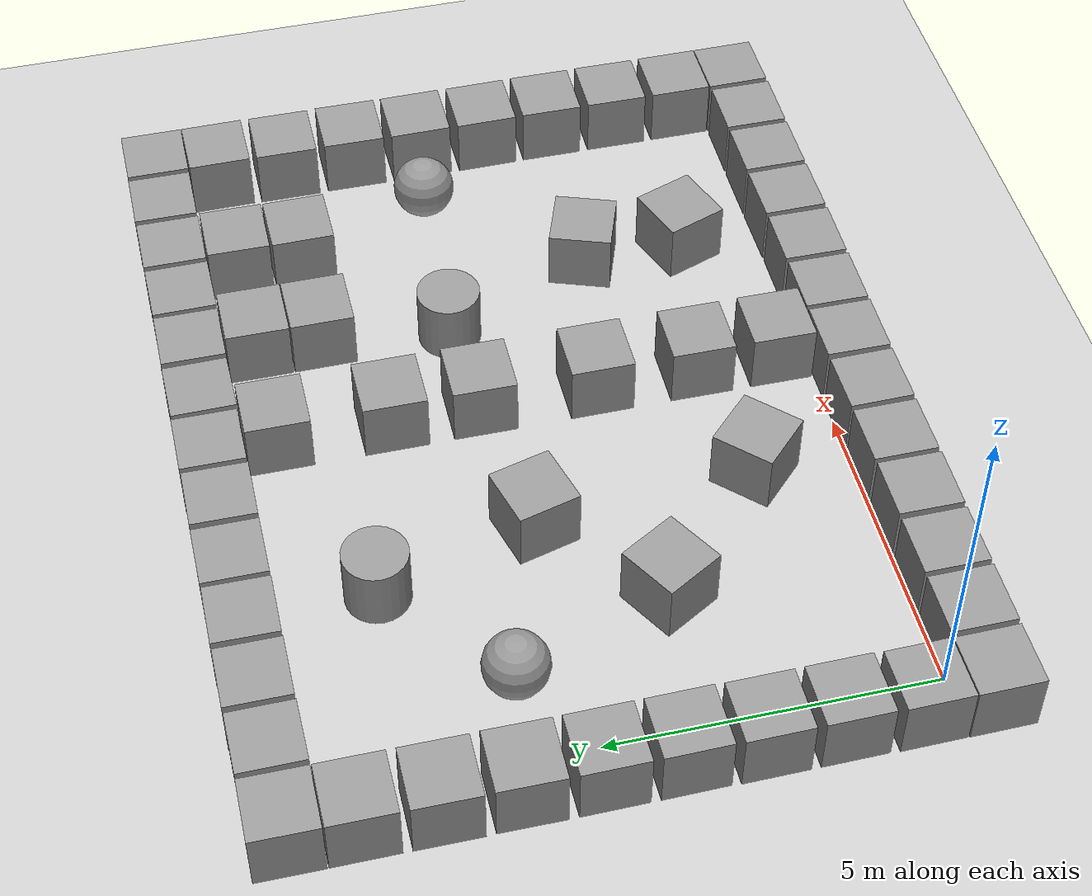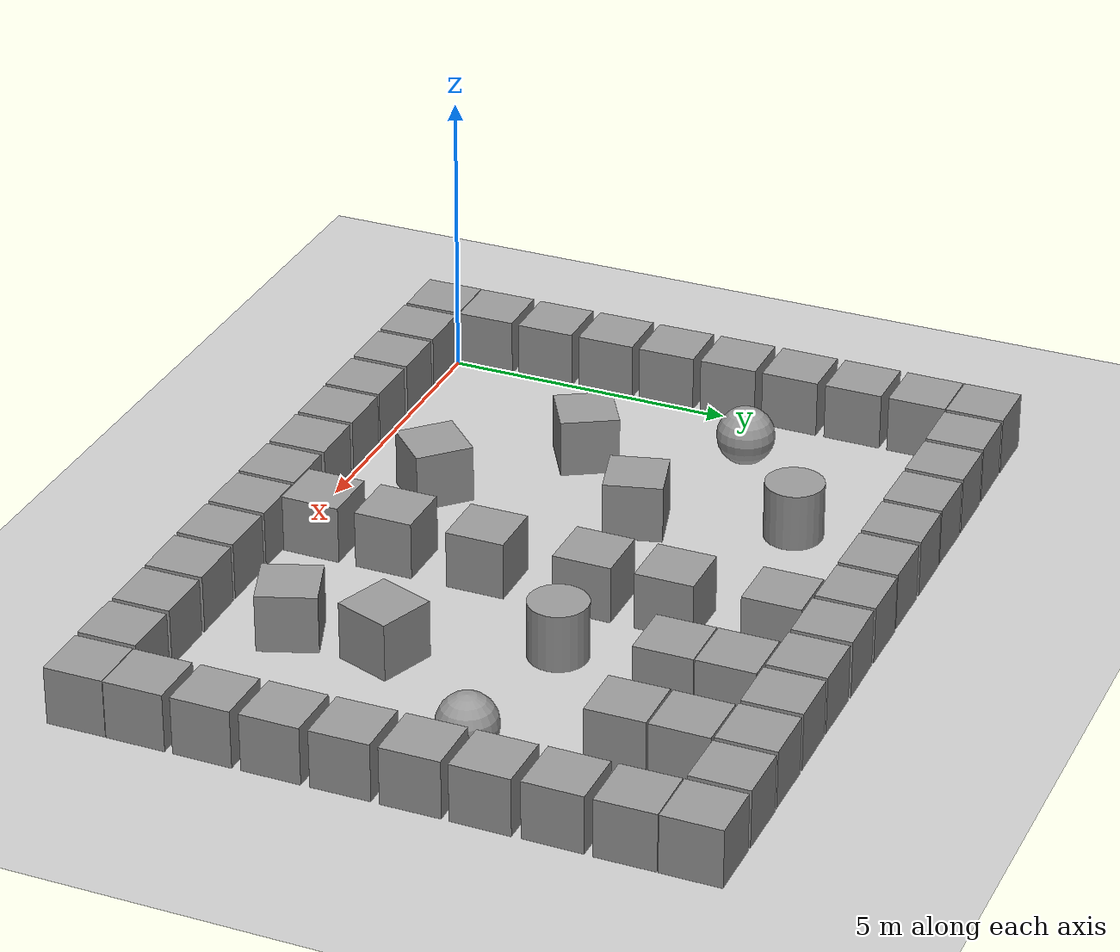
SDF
<?xml version="1.0"?>
<sdf version="1.6">
  <world name="gaps_test">
    <include><uri>model://ground_plane</uri></include>
    <include><uri>model://sun</uri></include>
    <physics type="ode"><real_time_update_rate>1000.0</real_time_update_rate><max_step_size>0.001</max_step_size><real_time_factor>1</real_time_factor><ode><solver><type>quick</type><iters>150</iters><precon_iters>0</precon_iters><sor>1.400000</sor><use_dynamic_moi_rescaling>1</use_dynamic_moi_rescaling></solver><constraints><cfm>0.00001</cfm><erp>0.2</erp><contact_max_correcting_vel>2000.000000</contact_max_correcting_vel><contact_surface_layer>0.01000</contact_surface_layer></constraints></ode></physics>
    <scene><shadows>false</shadows></scene>
    <gui fullscreen="0"><camera name="user_camera"><pose>6 -5 12 0 0.95 1.5707</pose><view_controller>orbit</view_controller><projection_type>perspective</projection_type></camera></gui>
    <model name='unit_box_0'>
      <pose>-0.5006 -0.4993 0.5 0 0 0.00888</pose>
      <link name='link'><inertial><mass>1</mass><inertia><ixx>0.166667</ixx><ixy>0</ixy><ixz>0</ixz><iyy>0.166667</iyy><iyz>0</iyz><izz>0.166667</izz></inertia></inertial>
        <collision name='collision'><geometry><box><size>1 1 1</size></box></geometry><max_contacts>10</max_contacts></collision>
        <visual name='visual'><geometry><box><size>1 1 1</size></box></geometry><material><script><uri>file://media/materials/scripts/gazebo.material</uri><name>Gazebo/Grey</name></script></material></visual>
      </link>
    </model>
    <model name='unit_box_1'>
      <pose>0.5829 -0.4999 0.5 0 0 0.00183</pose>
      <link name='link'><inertial><mass>1</mass><inertia><ixx>0.166667</ixx><ixy>0</ixy><ixz>0</ixz><iyy>0.166667</iyy><iyz>0</iyz><izz>0.166667</izz></inertia></inertial>
        <collision name='collision'><geometry><box><size>1 1 1</size></box></geometry><max_contacts>10</max_contacts></collision>
        <visual name='visual'><geometry><box><size>1 1 1</size></box></geometry><material><script><uri>file://media/materials/scripts/gazebo.material</uri><name>Gazebo/Grey</name></script></material></visual>
      </link>
    </model>
    <model name='unit_box_2'>
      <pose>1.6629 -0.4999 0.5 0 0 0.00272</pose>
      <link name='link'><inertial><mass>1</mass><inertia><ixx>0.166667</ixx><ixy>0</ixy><ixz>0</ixz><iyy>0.166667</iyy><iyz>0</iyz><izz>0.166667</izz></inertia></inertial>
        <collision name='collision'><geometry><box><size>1 1 1</size></box></geometry><max_contacts>10</max_contacts></collision>
        <visual name='visual'><geometry><box><size>1 1 1</size></box></geometry><material><script><uri>file://media/materials/scripts/gazebo.material</uri><name>Gazebo/Grey</name></script></material></visual>
      </link>
    </model>
    <model name='unit_box_3'>
      <pose>2.7535 -0.5049 0.5 0 0 -0.00412</pose>
      <link name='link'><inertial><mass>1</mass><inertia><ixx>0.166667</ixx><ixy>0</ixy><ixz>0</ixz><iyy>0.166667</iyy><iyz>0</iyz><izz>0.166667</izz></inertia></inertial>
        <collision name='collision'><geometry><box><size>1 1 1</size></box></geometry><max_contacts>10</max_contacts></collision>
        <visual name='visual'><geometry><box><size>1 1 1</size></box></geometry><material><script><uri>file://media/materials/scripts/gazebo.material</uri><name>Gazebo/Grey</name></script></material></visual>
      </link>
    </model>
    <model name='unit_box_4'>
      <pose>3.8284 -0.4963 0.5 0 0 0.00405</pose>
      <link name='link'><inertial><mass>1</mass><inertia><ixx>0.166667</ixx><ixy>0</ixy><ixz>0</ixz><iyy>0.166667</iyy><iyz>0</iyz><izz>0.166667</izz></inertia></inertial>
        <collision name='collision'><geometry><box><size>1 1 1</size></box></geometry><max_contacts>10</max_contacts></collision>
        <visual name='visual'><geometry><box><size>1 1 1</size></box></geometry><material><script><uri>file://media/materials/scripts/gazebo.material</uri><name>Gazebo/Grey</name></script></material></visual>
      </link>
    </model>
    <model name='unit_box_5'>
      <pose>4.9112 -0.4942 0.5 0 0 0.00973</pose>
      <link name='link'><inertial><mass>1</mass><inertia><ixx>0.166667</ixx><ixy>0</ixy><ixz>0</ixz><iyy>0.166667</iyy><iyz>0</iyz><izz>0.166667</izz></inertia></inertial>
        <collision name='collision'><geometry><box><size>1 1 1</size></box></geometry><max_contacts>10</max_contacts></collision>
        <visual name='visual'><geometry><box><size>1 1 1</size></box></geometry><material><script><uri>file://media/materials/scripts/gazebo.material</uri><name>Gazebo/Grey</name></script></material></visual>
      </link>
    </model>
    <model name='unit_box_6'>
      <pose>6.0018 -0.4986 0.5 0 0 -0.00717</pose>
      <link name='link'><inertial><mass>1</mass><inertia><ixx>0.166667</ixx><ixy>0</ixy><ixz>0</ixz><iyy>0.166667</iyy><iyz>0</iyz><izz>0.166667</izz></inertia></inertial>
        <collision name='collision'><geometry><box><size>1 1 1</size></box></geometry><max_contacts>10</max_contacts></collision>
        <visual name='visual'><geometry><box><size>1 1 1</size></box></geometry><material><script><uri>file://media/materials/scripts/gazebo.material</uri><name>Gazebo/Grey</name></script></material></visual>
      </link>
    </model>
    <model name='unit_box_7'>
      <pose>7.0775 -0.4997 0.5 0 0 -0.00922</pose>
      <link name='link'><inertial><mass>1</mass><inertia><ixx>0.166667</ixx><ixy>0</ixy><ixz>0</ixz><iyy>0.166667</iyy><iyz>0</iyz><izz>0.166667</izz></inertia></inertial>
        <collision name='collision'><geometry><box><size>1 1 1</size></box></geometry><max_contacts>10</max_contacts></collision>
        <visual name='visual'><geometry><box><size>1 1 1</size></box></geometry><material><script><uri>file://media/materials/scripts/gazebo.material</uri><name>Gazebo/Grey</name></script></material></visual>
      </link>
    </model>
    <model name='unit_box_8'>
      <pose>8.1629 -0.5031 0.5 0 0 -0.00984</pose>
      <link name='link'><inertial><mass>1</mass><inertia><ixx>0.166667</ixx><ixy>0</ixy><ixz>0</ixz><iyy>0.166667</iyy><iyz>0</iyz><izz>0.166667</izz></inertia></inertial>
        <collision name='collision'><geometry><box><size>1 1 1</size></box></geometry><max_contacts>10</max_contacts></collision>
        <visual name='visual'><geometry><box><size>1 1 1</size></box></geometry><material><script><uri>file://media/materials/scripts/gazebo.material</uri><name>Gazebo/Grey</name></script></material></visual>
      </link>
    </model>
    <model name='unit_box_9'>
      <pose>9.2496 -0.5007 0.5 0 0 0.00717</pose>
      <link name='link'><inertial><mass>1</mass><inertia><ixx>0.166667</ixx><ixy>0</ixy><ixz>0</ixz><iyy>0.166667</iyy><iyz>0</iyz><izz>0.166667</izz></inertia></inertial>
        <collision name='collision'><geometry><box><size>1 1 1</size></box></geometry><max_contacts>10</max_contacts></collision>
        <visual name='visual'><geometry><box><size>1 1 1</size></box></geometry><material><script><uri>file://media/materials/scripts/gazebo.material</uri><name>Gazebo/Grey</name></script></material></visual>
      </link>
    </model>
    <model name='unit_box_10'>
      <pose>10.3336 -0.4983 0.5 0 0 -0.00000</pose>
      <link name='link'><inertial><mass>1</mass><inertia><ixx>0.166667</ixx><ixy>0</ixy><ixz>0</ixz><iyy>0.166667</iyy><iyz>0</iyz><izz>0.166667</izz></inertia></inertial>
        <collision name='collision'><geometry><box><size>1 1 1</size></box></geometry><max_contacts>10</max_contacts></collision>
        <visual name='visual'><geometry><box><size>1 1 1</size></box></geometry><material><script><uri>file://media/materials/scripts/gazebo.material</uri><name>Gazebo/Grey</name></script></material></visual>
      </link>
    </model>
    <model name='unit_box_11'>
      <pose>11.4186 -0.5005 0.5 0 0 -0.00465</pose>
      <link name='link'><inertial><mass>1</mass><inertia><ixx>0.166667</ixx><ixy>0</ixy><ixz>0</ixz><iyy>0.166667</iyy><iyz>0</iyz><izz>0.166667</izz></inertia></inertial>
        <collision name='collision'><geometry><box><size>1 1 1</size></box></geometry><max_contacts>10</max_contacts></collision>
        <visual name='visual'><geometry><box><size>1 1 1</size></box></geometry><material><script><uri>file://media/materials/scripts/gazebo.material</uri><name>Gazebo/Grey</name></script></material></visual>
      </link>
    </model>
    <model name='unit_box_12'>
      <pose>12.5060 -0.4941 0.5 0 0 0.00713</pose>
      <link name='link'><inertial><mass>1</mass><inertia><ixx>0.166667</ixx><ixy>0</ixy><ixz>0</ixz><iyy>0.166667</iyy><iyz>0</iyz><izz>0.166667</izz></inertia></inertial>
        <collision name='collision'><geometry><box><size>1 1 1</size></box></geometry><max_contacts>10</max_contacts></collision>
        <visual name='visual'><geometry><box><size>1 1 1</size></box></geometry><material><script><uri>file://media/materials/scripts/gazebo.material</uri><name>Gazebo/Grey</name></script></material></visual>
      </link>
    </model>
    <model name='unit_box_13'>
      <pose>-0.4975 9.4978 0.5 0 0 -0.00566</pose>
      <link name='link'><inertial><mass>1</mass><inertia><ixx>0.166667</ixx><ixy>0</ixy><ixz>0</ixz><iyy>0.166667</iyy><iyz>0</iyz><izz>0.166667</izz></inertia></inertial>
        <collision name='collision'><geometry><box><size>1 1 1</size></box></geometry><max_contacts>10</max_contacts></collision>
        <visual name='visual'><geometry><box><size>1 1 1</size></box></geometry><material><script><uri>file://media/materials/scripts/gazebo.material</uri><name>Gazebo/Grey</name></script></material></visual>
      </link>
    </model>
    <model name='unit_box_14'>
      <pose>0.5808 9.4948 0.5 0 0 0.00558</pose>
      <link name='link'><inertial><mass>1</mass><inertia><ixx>0.166667</ixx><ixy>0</ixy><ixz>0</ixz><iyy>0.166667</iyy><iyz>0</iyz><izz>0.166667</izz></inertia></inertial>
        <collision name='collision'><geometry><box><size>1 1 1</size></box></geometry><max_contacts>10</max_contacts></collision>
        <visual name='visual'><geometry><box><size>1 1 1</size></box></geometry><material><script><uri>file://media/materials/scripts/gazebo.material</uri><name>Gazebo/Grey</name></script></material></visual>
      </link>
    </model>
    <model name='unit_box_15'>
      <pose>1.6655 9.5042 0.5 0 0 -0.00238</pose>
      <link name='link'><inertial><mass>1</mass><inertia><ixx>0.166667</ixx><ixy>0</ixy><ixz>0</ixz><iyy>0.166667</iyy><iyz>0</iyz><izz>0.166667</izz></inertia></inertial>
        <collision name='collision'><geometry><box><size>1 1 1</size></box></geometry><max_contacts>10</max_contacts></collision>
        <visual name='visual'><geometry><box><size>1 1 1</size></box></geometry><material><script><uri>file://media/materials/scripts/gazebo.material</uri><name>Gazebo/Grey</name></script></material></visual>
      </link>
    </model>
    <model name='unit_box_16'>
      <pose>2.7555 9.5042 0.5 0 0 -0.01046</pose>
      <link name='link'><inertial><mass>1</mass><inertia><ixx>0.166667</ixx><ixy>0</ixy><ixz>0</ixz><iyy>0.166667</iyy><iyz>0</iyz><izz>0.166667</izz></inertia></inertial>
        <collision name='collision'><geometry><box><size>1 1 1</size></box></geometry><max_contacts>10</max_contacts></collision>
        <visual name='visual'><geometry><box><size>1 1 1</size></box></geometry><material><script><uri>file://media/materials/scripts/gazebo.material</uri><name>Gazebo/Grey</name></script></material></visual>
      </link>
    </model>
    <model name='unit_box_17'>
      <pose>3.8298 9.5049 0.5 0 0 -0.00063</pose>
      <link name='link'><inertial><mass>1</mass><inertia><ixx>0.166667</ixx><ixy>0</ixy><ixz>0</ixz><iyy>0.166667</iyy><iyz>0</iyz><izz>0.166667</izz></inertia></inertial>
        <collision name='collision'><geometry><box><size>1 1 1</size></box></geometry><max_contacts>10</max_contacts></collision>
        <visual name='visual'><geometry><box><size>1 1 1</size></box></geometry><material><script><uri>file://media/materials/scripts/gazebo.material</uri><name>Gazebo/Grey</name></script></material></visual>
      </link>
    </model>
    <model name='unit_box_18'>
      <pose>4.9224 9.4988 0.5 0 0 -0.00894</pose>
      <link name='link'><inertial><mass>1</mass><inertia><ixx>0.166667</ixx><ixy>0</ixy><ixz>0</ixz><iyy>0.166667</iyy><iyz>0</iyz><izz>0.166667</izz></inertia></inertial>
        <collision name='collision'><geometry><box><size>1 1 1</size></box></geometry><max_contacts>10</max_contacts></collision>
        <visual name='visual'><geometry><box><size>1 1 1</size></box></geometry><material><script><uri>file://media/materials/scripts/gazebo.material</uri><name>Gazebo/Grey</name></script></material></visual>
      </link>
    </model>
    <model name='unit_box_19'>
      <pose>6.0016 9.5033 0.5 0 0 -0.00482</pose>
      <link name='link'><inertial><mass>1</mass><inertia><ixx>0.166667</ixx><ixy>0</ixy><ixz>0</ixz><iyy>0.166667</iyy><iyz>0</iyz><izz>0.166667</izz></inertia></inertial>
        <collision name='collision'><geometry><box><size>1 1 1</size></box></geometry><max_contacts>10</max_contacts></collision>
        <visual name='visual'><geometry><box><size>1 1 1</size></box></geometry><material><script><uri>file://media/materials/scripts/gazebo.material</uri><name>Gazebo/Grey</name></script></material></visual>
      </link>
    </model>
    <model name='unit_box_20'>
      <pose>7.0784 9.4980 0.5 0 0 0.00972</pose>
      <link name='link'><inertial><mass>1</mass><inertia><ixx>0.166667</ixx><ixy>0</ixy><ixz>0</ixz><iyy>0.166667</iyy><iyz>0</iyz><izz>0.166667</izz></inertia></inertial>
        <collision name='collision'><geometry><box><size>1 1 1</size></box></geometry><max_contacts>10</max_contacts></collision>
        <visual name='visual'><geometry><box><size>1 1 1</size></box></geometry><material><script><uri>file://media/materials/scripts/gazebo.material</uri><name>Gazebo/Grey</name></script></material></visual>
      </link>
    </model>
    <model name='unit_box_21'>
      <pose>8.1698 9.4954 0.5 0 0 -0.00531</pose>
      <link name='link'><inertial><mass>1</mass><inertia><ixx>0.166667</ixx><ixy>0</ixy><ixz>0</ixz><iyy>0.166667</iyy><iyz>0</iyz><izz>0.166667</izz></inertia></inertial>
        <collision name='collision'><geometry><box><size>1 1 1</size></box></geometry><max_contacts>10</max_contacts></collision>
        <visual name='visual'><geometry><box><size>1 1 1</size></box></geometry><material><script><uri>file://media/materials/scripts/gazebo.material</uri><name>Gazebo/Grey</name></script></material></visual>
      </link>
    </model>
    <model name='unit_box_22'>
      <pose>9.2452 9.4947 0.5 0 0 0.00622</pose>
      <link name='link'><inertial><mass>1</mass><inertia><ixx>0.166667</ixx><ixy>0</ixy><ixz>0</ixz><iyy>0.166667</iyy><iyz>0</iyz><izz>0.166667</izz></inertia></inertial>
        <collision name='collision'><geometry><box><size>1 1 1</size></box></geometry><max_contacts>10</max_contacts></collision>
        <visual name='visual'><geometry><box><size>1 1 1</size></box></geometry><material><script><uri>file://media/materials/scripts/gazebo.material</uri><name>Gazebo/Grey</name></script></material></visual>
      </link>
    </model>
    <model name='unit_box_23'>
      <pose>10.3295 9.5007 0.5 0 0 -0.00110</pose>
      <link name='link'><inertial><mass>1</mass><inertia><ixx>0.166667</ixx><ixy>0</ixy><ixz>0</ixz><iyy>0.166667</iyy><iyz>0</iyz><izz>0.166667</izz></inertia></inertial>
        <collision name='collision'><geometry><box><size>1 1 1</size></box></geometry><max_contacts>10</max_contacts></collision>
        <visual name='visual'><geometry><box><size>1 1 1</size></box></geometry><material><script><uri>file://media/materials/scripts/gazebo.material</uri><name>Gazebo/Grey</name></script></material></visual>
      </link>
    </model>
    <model name='unit_box_24'>
      <pose>11.4130 9.5028 0.5 0 0 -0.00773</pose>
      <link name='link'><inertial><mass>1</mass><inertia><ixx>0.166667</ixx><ixy>0</ixy><ixz>0</ixz><iyy>0.166667</iyy><iyz>0</iyz><izz>0.166667</izz></inertia></inertial>
        <collision name='collision'><geometry><box><size>1 1 1</size></box></geometry><max_contacts>10</max_contacts></collision>
        <visual name='visual'><geometry><box><size>1 1 1</size></box></geometry><material><script><uri>file://media/materials/scripts/gazebo.material</uri><name>Gazebo/Grey</name></script></material></visual>
      </link>
    </model>
    <model name='unit_box_25'>
      <pose>12.5017 9.4954 0.5 0 0 -0.00166</pose>
      <link name='link'><inertial><mass>1</mass><inertia><ixx>0.166667</ixx><ixy>0</ixy><ixz>0</ixz><iyy>0.166667</iyy><iyz>0</iyz><izz>0.166667</izz></inertia></inertial>
        <collision name='collision'><geometry><box><size>1 1 1</size></box></geometry><max_contacts>10</max_contacts></collision>
        <visual name='visual'><geometry><box><size>1 1 1</size></box></geometry><material><script><uri>file://media/materials/scripts/gazebo.material</uri><name>Gazebo/Grey</name></script></material></visual>
      </link>
    </model>
    <model name='unit_box_26'>
      <pose>-0.5034 0.5172 0.5 0 0 0.00986</pose>
      <link name='link'><inertial><mass>1</mass><inertia><ixx>0.166667</ixx><ixy>0</ixy><ixz>0</ixz><iyy>0.166667</iyy><iyz>0</iyz><izz>0.166667</izz></inertia></inertial>
        <collision name='collision'><geometry><box><size>1 1 1</size></box></geometry><max_contacts>10</max_contacts></collision>
        <visual name='visual'><geometry><box><size>1 1 1</size></box></geometry><material><script><uri>file://media/materials/scripts/gazebo.material</uri><name>Gazebo/Grey</name></script></material></visual>
      </link>
    </model>
    <model name='unit_box_27'>
      <pose>-0.4964 1.6548 0.5 0 0 0.00806</pose>
      <link name='link'><inertial><mass>1</mass><inertia><ixx>0.166667</ixx><ixy>0</ixy><ixz>0</ixz><iyy>0.166667</iyy><iyz>0</iyz><izz>0.166667</izz></inertia></inertial>
        <collision name='collision'><geometry><box><size>1 1 1</size></box></geometry><max_contacts>10</max_contacts></collision>
        <visual name='visual'><geometry><box><size>1 1 1</size></box></geometry><material><script><uri>file://media/materials/scripts/gazebo.material</uri><name>Gazebo/Grey</name></script></material></visual>
      </link>
    </model>
    <model name='unit_box_28'>
      <pose>-0.5035 2.7930 0.5 0 0 0.00742</pose>
      <link name='link'><inertial><mass>1</mass><inertia><ixx>0.166667</ixx><ixy>0</ixy><ixz>0</ixz><iyy>0.166667</iyy><iyz>0</iyz><izz>0.166667</izz></inertia></inertial>
        <collision name='collision'><geometry><box><size>1 1 1</size></box></geometry><max_contacts>10</max_contacts></collision>
        <visual name='visual'><geometry><box><size>1 1 1</size></box></geometry><material><script><uri>file://media/materials/scripts/gazebo.material</uri><name>Gazebo/Grey</name></script></material></visual>
      </link>
    </model>
    <model name='unit_box_29'>
      <pose>-0.4983 3.9266 0.5 0 0 0.01025</pose>
      <link name='link'><inertial><mass>1</mass><inertia><ixx>0.166667</ixx><ixy>0</ixy><ixz>0</ixz><iyy>0.166667</iyy><iyz>0</iyz><izz>0.166667</izz></inertia></inertial>
        <collision name='collision'><geometry><box><size>1 1 1</size></box></geometry><max_contacts>10</max_contacts></collision>
        <visual name='visual'><geometry><box><size>1 1 1</size></box></geometry><material><script><uri>file://media/materials/scripts/gazebo.material</uri><name>Gazebo/Grey</name></script></material></visual>
      </link>
    </model>
    <model name='unit_box_30'>
      <pose>-0.5034 5.0657 0.5 0 0 0.00571</pose>
      <link name='link'><inertial><mass>1</mass><inertia><ixx>0.166667</ixx><ixy>0</ixy><ixz>0</ixz><iyy>0.166667</iyy><iyz>0</iyz><izz>0.166667</izz></inertia></inertial>
        <collision name='collision'><geometry><box><size>1 1 1</size></box></geometry><max_contacts>10</max_contacts></collision>
        <visual name='visual'><geometry><box><size>1 1 1</size></box></geometry><material><script><uri>file://media/materials/scripts/gazebo.material</uri><name>Gazebo/Grey</name></script></material></visual>
      </link>
    </model>
    <model name='unit_box_31'>
      <pose>-0.5021 6.2033 0.5 0 0 -0.00893</pose>
      <link name='link'><inertial><mass>1</mass><inertia><ixx>0.166667</ixx><ixy>0</ixy><ixz>0</ixz><iyy>0.166667</iyy><iyz>0</iyz><izz>0.166667</izz></inertia></inertial>
        <collision name='collision'><geometry><box><size>1 1 1</size></box></geometry><max_contacts>10</max_contacts></collision>
        <visual name='visual'><geometry><box><size>1 1 1</size></box></geometry><material><script><uri>file://media/materials/scripts/gazebo.material</uri><name>Gazebo/Grey</name></script></material></visual>
      </link>
    </model>
    <model name='unit_box_32'>
      <pose>-0.5049 7.3438 0.5 0 0 -0.00538</pose>
      <link name='link'><inertial><mass>1</mass><inertia><ixx>0.166667</ixx><ixy>0</ixy><ixz>0</ixz><iyy>0.166667</iyy><iyz>0</iyz><izz>0.166667</izz></inertia></inertial>
        <collision name='collision'><geometry><box><size>1 1 1</size></box></geometry><max_contacts>10</max_contacts></collision>
        <visual name='visual'><geometry><box><size>1 1 1</size></box></geometry><material><script><uri>file://media/materials/scripts/gazebo.material</uri><name>Gazebo/Grey</name></script></material></visual>
      </link>
    </model>
    <model name='unit_box_33'>
      <pose>-0.4988 8.4785 0.5 0 0 -0.00098</pose>
      <link name='link'><inertial><mass>1</mass><inertia><ixx>0.166667</ixx><ixy>0</ixy><ixz>0</ixz><iyy>0.166667</iyy><iyz>0</iyz><izz>0.166667</izz></inertia></inertial>
        <collision name='collision'><geometry><box><size>1 1 1</size></box></geometry><max_contacts>10</max_contacts></collision>
        <visual name='visual'><geometry><box><size>1 1 1</size></box></geometry><material><script><uri>file://media/materials/scripts/gazebo.material</uri><name>Gazebo/Grey</name></script></material></visual>
      </link>
    </model>
    <model name='unit_box_34'>
      <pose>12.5055 0.5198 0.5 0 0 0.00156</pose>
      <link name='link'><inertial><mass>1</mass><inertia><ixx>0.166667</ixx><ixy>0</ixy><ixz>0</ixz><iyy>0.166667</iyy><iyz>0</iyz><izz>0.166667</izz></inertia></inertial>
        <collision name='collision'><geometry><box><size>1 1 1</size></box></geometry><max_contacts>10</max_contacts></collision>
        <visual name='visual'><geometry><box><size>1 1 1</size></box></geometry><material><script><uri>file://media/materials/scripts/gazebo.material</uri><name>Gazebo/Grey</name></script></material></visual>
      </link>
    </model>
    <model name='unit_box_35'>
      <pose>12.5044 1.6533 0.5 0 0 -0.00724</pose>
      <link name='link'><inertial><mass>1</mass><inertia><ixx>0.166667</ixx><ixy>0</ixy><ixz>0</ixz><iyy>0.166667</iyy><iyz>0</iyz><izz>0.166667</izz></inertia></inertial>
        <collision name='collision'><geometry><box><size>1 1 1</size></box></geometry><max_contacts>10</max_contacts></collision>
        <visual name='visual'><geometry><box><size>1 1 1</size></box></geometry><material><script><uri>file://media/materials/scripts/gazebo.material</uri><name>Gazebo/Grey</name></script></material></visual>
      </link>
    </model>
    <model name='unit_box_36'>
      <pose>12.5049 2.7981 0.5 0 0 -0.00525</pose>
      <link name='link'><inertial><mass>1</mass><inertia><ixx>0.166667</ixx><ixy>0</ixy><ixz>0</ixz><iyy>0.166667</iyy><iyz>0</iyz><izz>0.166667</izz></inertia></inertial>
        <collision name='collision'><geometry><box><size>1 1 1</size></box></geometry><max_contacts>10</max_contacts></collision>
        <visual name='visual'><geometry><box><size>1 1 1</size></box></geometry><material><script><uri>file://media/materials/scripts/gazebo.material</uri><name>Gazebo/Grey</name></script></material></visual>
      </link>
    </model>
    <model name='unit_box_37'>
      <pose>12.4963 3.9343 0.5 0 0 0.00922</pose>
      <link name='link'><inertial><mass>1</mass><inertia><ixx>0.166667</ixx><ixy>0</ixy><ixz>0</ixz><iyy>0.166667</iyy><iyz>0</iyz><izz>0.166667</izz></inertia></inertial>
        <collision name='collision'><geometry><box><size>1 1 1</size></box></geometry><max_contacts>10</max_contacts></collision>
        <visual name='visual'><geometry><box><size>1 1 1</size></box></geometry><material><script><uri>file://media/materials/scripts/gazebo.material</uri><name>Gazebo/Grey</name></script></material></visual>
      </link>
    </model>
    <model name='unit_box_38'>
      <pose>12.4964 5.0740 0.5 0 0 0.00800</pose>
      <link name='link'><inertial><mass>1</mass><inertia><ixx>0.166667</ixx><ixy>0</ixy><ixz>0</ixz><iyy>0.166667</iyy><iyz>0</iyz><izz>0.166667</izz></inertia></inertial>
        <collision name='collision'><geometry><box><size>1 1 1</size></box></geometry><max_contacts>10</max_contacts></collision>
        <visual name='visual'><geometry><box><size>1 1 1</size></box></geometry><material><script><uri>file://media/materials/scripts/gazebo.material</uri><name>Gazebo/Grey</name></script></material></visual>
      </link>
    </model>
    <model name='unit_box_39'>
      <pose>12.5012 6.2048 0.5 0 0 -0.00830</pose>
      <link name='link'><inertial><mass>1</mass><inertia><ixx>0.166667</ixx><ixy>0</ixy><ixz>0</ixz><iyy>0.166667</iyy><iyz>0</iyz><izz>0.166667</izz></inertia></inertial>
        <collision name='collision'><geometry><box><size>1 1 1</size></box></geometry><max_contacts>10</max_contacts></collision>
        <visual name='visual'><geometry><box><size>1 1 1</size></box></geometry><material><script><uri>file://media/materials/scripts/gazebo.material</uri><name>Gazebo/Grey</name></script></material></visual>
      </link>
    </model>
    <model name='unit_box_40'>
      <pose>12.4945 7.3484 0.5 0 0 -0.00548</pose>
      <link name='link'><inertial><mass>1</mass><inertia><ixx>0.166667</ixx><ixy>0</ixy><ixz>0</ixz><iyy>0.166667</iyy><iyz>0</iyz><izz>0.166667</izz></inertia></inertial>
        <collision name='collision'><geometry><box><size>1 1 1</size></box></geometry><max_contacts>10</max_contacts></collision>
        <visual name='visual'><geometry><box><size>1 1 1</size></box></geometry><material><script><uri>file://media/materials/scripts/gazebo.material</uri><name>Gazebo/Grey</name></script></material></visual>
      </link>
    </model>
    <model name='unit_box_41'>
      <pose>12.5025 8.4771 0.5 0 0 0.00678</pose>
      <link name='link'><inertial><mass>1</mass><inertia><ixx>0.166667</ixx><ixy>0</ixy><ixz>0</ixz><iyy>0.166667</iyy><iyz>0</iyz><izz>0.166667</izz></inertia></inertial>
        <collision name='collision'><geometry><box><size>1 1 1</size></box></geometry><max_contacts>10</max_contacts></collision>
        <visual name='visual'><geometry><box><size>1 1 1</size></box></geometry><material><script><uri>file://media/materials/scripts/gazebo.material</uri><name>Gazebo/Grey</name></script></material></visual>
      </link>
    </model>
    <model name='unit_box_42'>
      <pose>6.5012 0.5275 0.5 0 0 -0.00680</pose>
      <link name='link'><inertial><mass>1</mass><inertia><ixx>0.166667</ixx><ixy>0</ixy><ixz>0</ixz><iyy>0.166667</iyy><iyz>0</iyz><izz>0.166667</izz></inertia></inertial>
        <collision name='collision'><geometry><box><size>1 1 1</size></box></geometry><max_contacts>10</max_contacts></collision>
        <visual name='visual'><geometry><box><size>1 1 1</size></box></geometry><material><script><uri>file://media/materials/scripts/gazebo.material</uri><name>Gazebo/Grey</name></script></material></visual>
      </link>
    </model>
    <model name='unit_box_43'>
      <pose>6.5026 1.8248 0.5 0 0 -0.00569</pose>
      <link name='link'><inertial><mass>1</mass><inertia><ixx>0.166667</ixx><ixy>0</ixy><ixz>0</ixz><iyy>0.166667</iyy><iyz>0</iyz><izz>0.166667</izz></inertia></inertial>
        <collision name='collision'><geometry><box><size>1 1 1</size></box></geometry><max_contacts>10</max_contacts></collision>
        <visual name='visual'><geometry><box><size>1 1 1</size></box></geometry><material><script><uri>file://media/materials/scripts/gazebo.material</uri><name>Gazebo/Grey</name></script></material></visual>
      </link>
    </model>
    <model name='unit_box_44'>
      <pose>6.5007 3.4342 0.5 0 0 0.00239</pose>
      <link name='link'><inertial><mass>1</mass><inertia><ixx>0.166667</ixx><ixy>0</ixy><ixz>0</ixz><iyy>0.166667</iyy><iyz>0</iyz><izz>0.166667</izz></inertia></inertial>
        <collision name='collision'><geometry><box><size>1 1 1</size></box></geometry><max_contacts>10</max_contacts></collision>
        <visual name='visual'><geometry><box><size>1 1 1</size></box></geometry><material><script><uri>file://media/materials/scripts/gazebo.material</uri><name>Gazebo/Grey</name></script></material></visual>
      </link>
    </model>
    <model name='unit_box_45'>
      <pose>6.4974 5.2850 0.5 0 0 -0.00620</pose>
      <link name='link'><inertial><mass>1</mass><inertia><ixx>0.166667</ixx><ixy>0</ixy><ixz>0</ixz><iyy>0.166667</iyy><iyz>0</iyz><izz>0.166667</izz></inertia></inertial>
        <collision name='collision'><geometry><box><size>1 1 1</size></box></geometry><max_contacts>10</max_contacts></collision>
        <visual name='visual'><geometry><box><size>1 1 1</size></box></geometry><material><script><uri>file://media/materials/scripts/gazebo.material</uri><name>Gazebo/Grey</name></script></material></visual>
      </link>
    </model>
    <model name='unit_box_46'>
      <pose>6.4942 6.6772 0.5 0 0 -0.00114</pose>
      <link name='link'><inertial><mass>1</mass><inertia><ixx>0.166667</ixx><ixy>0</ixy><ixz>0</ixz><iyy>0.166667</iyy><iyz>0</iyz><izz>0.166667</izz></inertia></inertial>
        <collision name='collision'><geometry><box><size>1 1 1</size></box></geometry><max_contacts>10</max_contacts></collision>
        <visual name='visual'><geometry><box><size>1 1 1</size></box></geometry><material><script><uri>file://media/materials/scripts/gazebo.material</uri><name>Gazebo/Grey</name></script></material></visual>
      </link>
    </model>
    <model name='unit_box_47'>
      <pose>6.4947 8.4661 0.5 0 0 -0.00275</pose>
      <link name='link'><inertial><mass>1</mass><inertia><ixx>0.166667</ixx><ixy>0</ixy><ixz>0</ixz><iyy>0.166667</iyy><iyz>0</iyz><izz>0.166667</izz></inertia></inertial>
        <collision name='collision'><geometry><box><size>1 1 1</size></box></geometry><max_contacts>10</max_contacts></collision>
        <visual name='visual'><geometry><box><size>1 1 1</size></box></geometry><material><script><uri>file://media/materials/scripts/gazebo.material</uri><name>Gazebo/Grey</name></script></material></visual>
      </link>
    </model>
    <model name='unit_box_48'>
      <pose>4.3000 1.5000 0.5 0 0 0.78540</pose>
      <link name='link'><inertial><mass>1</mass><inertia><ixx>0.166667</ixx><ixy>0</ixy><ixz>0</ixz><iyy>0.166667</iyy><iyz>0</iyz><izz>0.166667</izz></inertia></inertial>
        <collision name='collision'><geometry><box><size>1 1 1</size></box></geometry><max_contacts>10</max_contacts></collision>
        <visual name='visual'><geometry><box><size>1 1 1</size></box></geometry><material><script><uri>file://media/materials/scripts/gazebo.material</uri><name>Gazebo/Grey</name></script></material></visual>
      </link>
    </model>
    <model name='unit_box_49'>
      <pose>2.3000 3.4000 0.5 0 0 0.52360</pose>
      <link name='link'><inertial><mass>1</mass><inertia><ixx>0.166667</ixx><ixy>0</ixy><ixz>0</ixz><iyy>0.166667</iyy><iyz>0</iyz><izz>0.166667</izz></inertia></inertial>
        <collision name='collision'><geometry><box><size>1 1 1</size></box></geometry><max_contacts>10</max_contacts></collision>
        <visual name='visual'><geometry><box><size>1 1 1</size></box></geometry><material><script><uri>file://media/materials/scripts/gazebo.material</uri><name>Gazebo/Grey</name></script></material></visual>
      </link>
    </model>
    <model name='unit_box_50'>
      <pose>4.0000 5.0000 0.5 0 0 0.26180</pose>
      <link name='link'><inertial><mass>1</mass><inertia><ixx>0.166667</ixx><ixy>0</ixy><ixz>0</ixz><iyy>0.166667</iyy><iyz>0</iyz><izz>0.166667</izz></inertia></inertial>
        <collision name='collision'><geometry><box><size>1 1 1</size></box></geometry><max_contacts>10</max_contacts></collision>
        <visual name='visual'><geometry><box><size>1 1 1</size></box></geometry><material><script><uri>file://media/materials/scripts/gazebo.material</uri><name>Gazebo/Grey</name></script></material></visual>
      </link>
    </model>
    <model name='unit_box_51'>
      <pose>9.3000 1.3000 0.5 0 0 0.34907</pose>
      <link name='link'><inertial><mass>1</mass><inertia><ixx>0.166667</ixx><ixy>0</ixy><ixz>0</ixz><iyy>0.166667</iyy><iyz>0</iyz><izz>0.166667</izz></inertia></inertial>
        <collision name='collision'><geometry><box><size>1 1 1</size></box></geometry><max_contacts>10</max_contacts></collision>
        <visual name='visual'><geometry><box><size>1 1 1</size></box></geometry><material><script><uri>file://media/materials/scripts/gazebo.material</uri><name>Gazebo/Grey</name></script></material></visual>
      </link>
    </model>
    <model name='unit_box_52'>
      <pose>9.3000 2.9320 0.5 0 0 -0.34907</pose>
      <link name='link'><inertial><mass>1</mass><inertia><ixx>0.166667</ixx><ixy>0</ixy><ixz>0</ixz><iyy>0.166667</iyy><iyz>0</iyz><izz>0.166667</izz></inertia></inertial>
        <collision name='collision'><geometry><box><size>1 1 1</size></box></geometry><max_contacts>10</max_contacts></collision>
        <visual name='visual'><geometry><box><size>1 1 1</size></box></geometry><material><script><uri>file://media/materials/scripts/gazebo.material</uri><name>Gazebo/Grey</name></script></material></visual>
      </link>
    </model>
    <model name='unit_box_53'>
      <pose>8.4709 8.4656 0.5 0 0 -0.00289</pose>
      <link name='link'><inertial><mass>1</mass><inertia><ixx>0.166667</ixx><ixy>0</ixy><ixz>0</ixz><iyy>0.166667</iyy><iyz>0</iyz><izz>0.166667</izz></inertia></inertial>
        <collision name='collision'><geometry><box><size>1 1 1</size></box></geometry><max_contacts>10</max_contacts></collision>
        <visual name='visual'><geometry><box><size>1 1 1</size></box></geometry><material><script><uri>file://media/materials/scripts/gazebo.material</uri><name>Gazebo/Grey</name></script></material></visual>
      </link>
    </model>
    <model name='unit_box_54'>
      <pose>8.4747 7.4458 0.5 0 0 0.00329</pose>
      <link name='link'><inertial><mass>1</mass><inertia><ixx>0.166667</ixx><ixy>0</ixy><ixz>0</ixz><iyy>0.166667</iyy><iyz>0</iyz><izz>0.166667</izz></inertia></inertial>
        <collision name='collision'><geometry><box><size>1 1 1</size></box></geometry><max_contacts>10</max_contacts></collision>
        <visual name='visual'><geometry><box><size>1 1 1</size></box></geometry><material><script><uri>file://media/materials/scripts/gazebo.material</uri><name>Gazebo/Grey</name></script></material></visual>
      </link>
    </model>
    <model name='unit_box_55'>
      <pose>10.3723 8.4710 0.5 0 0 -0.00753</pose>
      <link name='link'><inertial><mass>1</mass><inertia><ixx>0.166667</ixx><ixy>0</ixy><ixz>0</ixz><iyy>0.166667</iyy><iyz>0</iyz><izz>0.166667</izz></inertia></inertial>
        <collision name='collision'><geometry><box><size>1 1 1</size></box></geometry><max_contacts>10</max_contacts></collision>
        <visual name='visual'><geometry><box><size>1 1 1</size></box></geometry><material><script><uri>file://media/materials/scripts/gazebo.material</uri><name>Gazebo/Grey</name></script></material></visual>
      </link>
    </model>
    <model name='unit_box_56'>
      <pose>10.3644 7.4342 0.5 0 0 0.00859</pose>
      <link name='link'><inertial><mass>1</mass><inertia><ixx>0.166667</ixx><ixy>0</ixy><ixz>0</ixz><iyy>0.166667</iyy><iyz>0</iyz><izz>0.166667</izz></inertia></inertial>
        <collision name='collision'><geometry><box><size>1 1 1</size></box></geometry><max_contacts>10</max_contacts></collision>
        <visual name='visual'><geometry><box><size>1 1 1</size></box></geometry><material><script><uri>file://media/materials/scripts/gazebo.material</uri><name>Gazebo/Grey</name></script></material></visual>
      </link>
    </model>
    <model name='unit_sphere_0'>
      <pose>1.3000 5.9000 0.5 0 0 0.00000</pose>
      <link name='link'><inertial><mass>1</mass><inertia><ixx>0.166667</ixx><ixy>0</ixy><ixz>0</ixz><iyy>0.166667</iyy><iyz>0</iyz><izz>0.166667</izz></inertia></inertial>
        <collision name='collision'><geometry><sphere><radius>0.5</radius></sphere></geometry><max_contacts>10</max_contacts></collision>
        <visual name='visual'><geometry><sphere><radius>0.5</radius></sphere></geometry><material><script><uri>file://media/materials/scripts/gazebo.material</uri><name>Gazebo/Grey</name></script></material></visual>
      </link>
    </model>
    <model name='unit_sphere_1'>
      <pose>11.2000 5.2000 0.5 0 0 0.00000</pose>
      <link name='link'><inertial><mass>1</mass><inertia><ixx>0.166667</ixx><ixy>0</ixy><ixz>0</ixz><iyy>0.166667</iyy><iyz>0</iyz><izz>0.166667</izz></inertia></inertial>
        <collision name='collision'><geometry><sphere><radius>0.5</radius></sphere></geometry><max_contacts>10</max_contacts></collision>
        <visual name='visual'><geometry><sphere><radius>0.5</radius></sphere></geometry><material><script><uri>file://media/materials/scripts/gazebo.material</uri><name>Gazebo/Grey</name></script></material></visual>
      </link>
    </model>
    <model name='unit_cylinder_0'>
      <pose>3.3000 7.5000 0.5 0 0 0.00000</pose>
      <link name='link'><inertial><mass>1</mass><inertia><ixx>0.166667</ixx><ixy>0</ixy><ixz>0</ixz><iyy>0.166667</iyy><iyz>0</iyz><izz>0.166667</izz></inertia></inertial>
        <collision name='collision'><geometry><cylinder><radius>0.5</radius><length>1</length></cylinder></geometry><max_contacts>10</max_contacts></collision>
        <visual name='visual'><geometry><cylinder><radius>0.5</radius><length>1</length></cylinder></geometry><material><script><uri>file://media/materials/scripts/gazebo.material</uri><name>Gazebo/Grey</name></script></material></visual>
      </link>
    </model>
    <model name='unit_cylinder_1'>
      <pose>8.2000 5.4000 0.5 0 0 0.00000</pose>
      <link name='link'><inertial><mass>1</mass><inertia><ixx>0.166667</ixx><ixy>0</ixy><ixz>0</ixz><iyy>0.166667</iyy><iyz>0</iyz><izz>0.166667</izz></inertia></inertial>
        <collision name='collision'><geometry><cylinder><radius>0.5</radius><length>1</length></cylinder></geometry><max_contacts>10</max_contacts></collision>
        <visual name='visual'><geometry><cylinder><radius>0.5</radius><length>1</length></cylinder></geometry><material><script><uri>file://media/materials/scripts/gazebo.material</uri><name>Gazebo/Grey</name></script></material></visual>
      </link>
    </model>
  </world>
</sdf>
